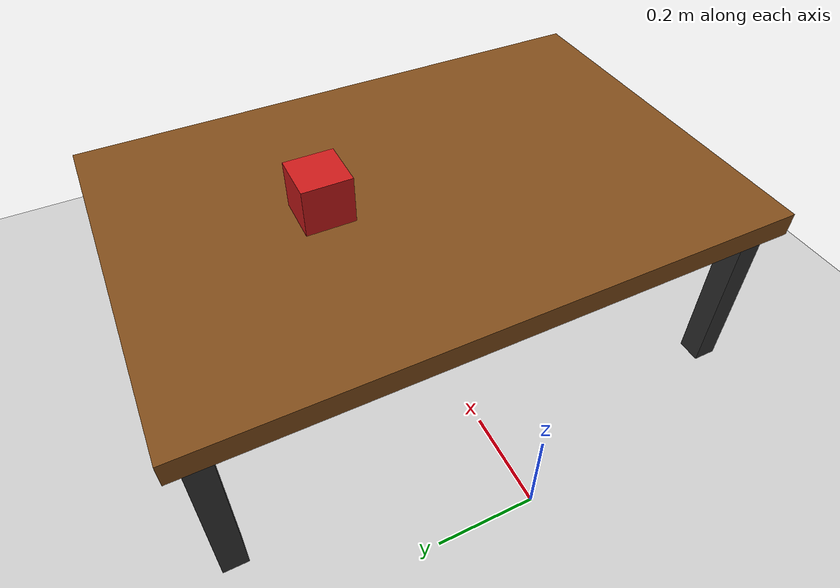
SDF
<?xml version="1.0" ?>
<sdf version="1.8">
  <world name="example_table_world">
    <!-- Physics settings -->
    <physics name="1ms" type="ignored">
      <max_step_size>0.001</max_step_size>
      <real_time_factor>1.0</real_time_factor>
    </physics>
    <plugin
      filename="gz-sim-physics-system"
      name="gz::sim::systems::Physics">
    </plugin>
    <plugin
      filename="gz-sim-user-commands-system"
      name="gz::sim::systems::UserCommands">
    </plugin>
    <plugin
      filename="gz-sim-scene-broadcaster-system"
      name="gz::sim::systems::SceneBroadcaster">
    </plugin>

    <!-- Light -->
    <light type="directional" name="sun">
      <cast_shadows>true</cast_shadows>
      <pose>0 0 10 0 0 0</pose>
      <diffuse>0.8 0.8 0.8 1</diffuse>
      <specular>0.2 0.2 0.2 1</specular>
      <attenuation>
        <range>1000</range>
        <constant>0.9</constant>
        <linear>0.01</linear>
        <quadratic>0.001</quadratic>
      </attenuation>
      <direction>-0.5 0.1 -0.9</direction>
    </light>

    <!-- Ground Plane -->
    <model name="ground_plane">
      <static>true</static>
      <link name="link">
        <collision name="collision">
          <geometry>
            <plane>
              <normal>0 0 1</normal>
              <size>100 100</size>
            </plane>
          </geometry>
          <surface>
            <friction>
              <ode>
                <mu>100</mu>
                <mu2>50</mu2>
              </ode>
            </friction>
          </surface>
        </collision>
        <visual name="visual">
          <geometry>
            <plane>
              <normal>0 0 1</normal>
              <size>100 100</size>
            </plane>
          </geometry>
          <material>
            <ambient>0.8 0.8 0.8 1</ambient>
            <diffuse>0.8 0.8 0.8 1</diffuse>
            <specular>0.8 0.8 0.8 1</specular>
          </material>
        </visual>
      </link>
    </model>

    <!-- Table -->
    <model name="table">
      <static>true</static>
      <!-- Put table in front of robot, let's say robot is at 0,0,0 -->
      <pose>0.5 0 0.4 0 0 0</pose>
      <link name="link">
        <collision name="surface">
          <geometry>
            <box>
              <size>0.8 1.2 0.05</size>
            </box>
          </geometry>
        </collision>
        <visual name="visual">
          <geometry>
            <box>
              <size>0.8 1.2 0.05</size>
            </box>
          </geometry>
          <material>
            <ambient>0.5 0.3 0.1 1</ambient>
            <diffuse>0.5 0.3 0.1 1</diffuse>
          </material>
        </visual>
        <!-- Table legs -->
        <collision name="leg1">
          <pose>0.35 0.55 -0.2 0 0 0</pose>
          <geometry><box><size>0.05 0.05 0.4</size></box></geometry>
        </collision>
        <visual name="leg1_vis">
          <pose>0.35 0.55 -0.2 0 0 0</pose>
          <geometry><box><size>0.05 0.05 0.4</size></box></geometry>
          <material><ambient>0.2 0.2 0.2 1</ambient></material>
        </visual>

        <collision name="leg2">
          <pose>-0.35 0.55 -0.2 0 0 0</pose>
          <geometry><box><size>0.05 0.05 0.4</size></box></geometry>
        </collision>
        <visual name="leg2_vis">
          <pose>-0.35 0.55 -0.2 0 0 0</pose>
          <geometry><box><size>0.05 0.05 0.4</size></box></geometry>
          <material><ambient>0.2 0.2 0.2 1</ambient></material>
        </visual>

        <collision name="leg3">
          <pose>0.35 -0.55 -0.2 0 0 0</pose>
          <geometry><box><size>0.05 0.05 0.4</size></box></geometry>
        </collision>
        <visual name="leg3_vis">
          <pose>0.35 -0.55 -0.2 0 0 0</pose>
          <geometry><box><size>0.05 0.05 0.4</size></box></geometry>
          <material><ambient>0.2 0.2 0.2 1</ambient></material>
        </visual>

        <collision name="leg4">
          <pose>-0.35 -0.55 -0.2 0 0 0</pose>
          <geometry><box><size>0.05 0.05 0.4</size></box></geometry>
        </collision>
        <visual name="leg4_vis">
          <pose>-0.35 -0.55 -0.2 0 0 0</pose>
          <geometry><box><size>0.05 0.05 0.4</size></box></geometry>
          <material><ambient>0.2 0.2 0.2 1</ambient></material>
        </visual>
      </link>
    </model>

    <!-- Box obstacle -->
    <model name="obstacle_box">
      <!-- Dynamic object, so we don't set static=true -->
      <pose>0.5 0.2 0.475 0 0 0</pose>
      <link name="link">
        <inertial>
          <mass>1.0</mass>
          <inertia>
            <ixx>0.001</ixx>
            <ixy>0</ixy>
            <ixz>0</ixz>
            <iyy>0.001</iyy>
            <iyz>0</iyz>
            <izz>0.001</izz>
          </inertia>
        </inertial>
        <collision name="collision">
          <geometry>
            <box>
              <size>0.1 0.1 0.1</size>
            </box>
          </geometry>
          <surface>
            <friction>
              <ode>
                <mu>1.0</mu>
                <mu2>1.0</mu2>
              </ode>
            </friction>
          </surface>
        </collision>
        <visual name="visual">
          <geometry>
            <box>
              <size>0.1 0.1 0.1</size>
            </box>
          </geometry>
          <material>
            <ambient>0.8 0.1 0.1 1</ambient>
            <diffuse>0.8 0.1 0.1 1</diffuse>
          </material>
        </visual>
      </link>
    </model>

  </world>
</sdf>
